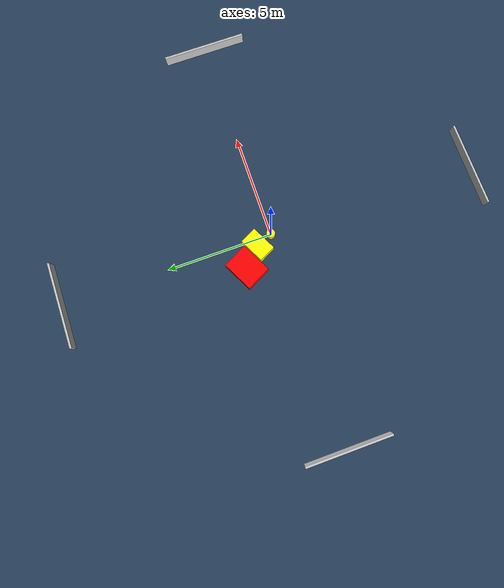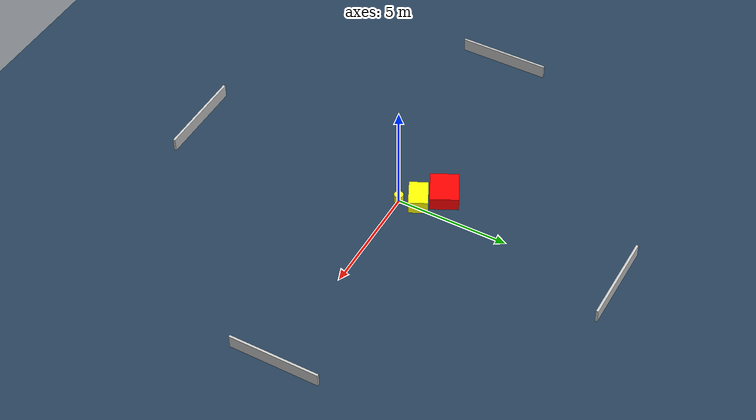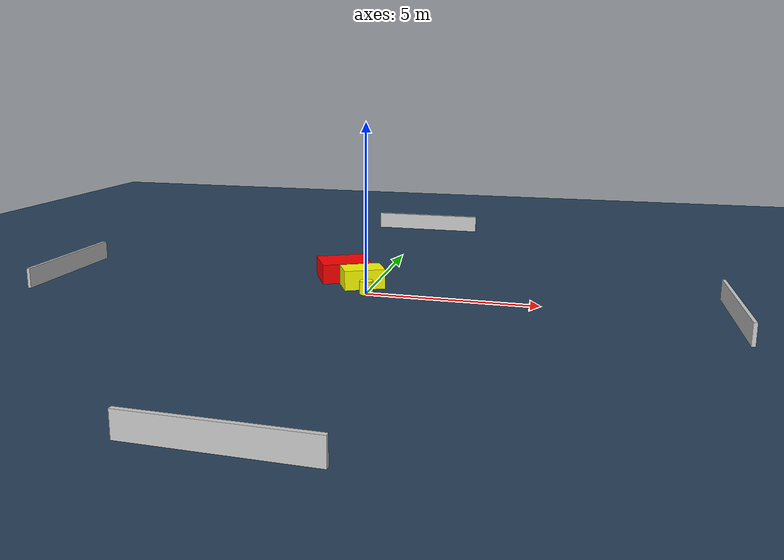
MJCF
<?xml version="1.0" ?>
<mujoco model="generated_environment">
  <option timestep="0.01" integrator="RK4" cone="elliptic"/>
  <default>
    <geom density="1"/>
  </default>
  <asset>
    <texture builtin="gradient" height="3072" name="skybox" rgb1="0.3 0.5 0.7" rgb2="0 0 0" type="skybox" width="512"/>
    <texture builtin="checker" height="300" name="groundplane" rgb1="0.2 0.3 0.4" rgb2="0.1 0.2 0.3" type="2d" width="300"/>
    <material name="groundplane" reflectance="0.2" texrepeat="5 5" texture="groundplane"/>
  </asset>
  <worldbody>
    <light dir="0 0 -1" directional="true" pos="0 0 1.5"/>
    <geom condim="3" friction="0.5 0.005 0.001" material="groundplane" name="floor" pos="0 0 0" size="0 0 0.05" type="plane"/>
    <body name="walls">
      <geom name="wall_1" condim="4" pos="-10.0 0.0 0.3" rgba="0.800000011920929 0.800000011920929 0.800000011920929 1.0" size="0.05 2.0 0.3" type="box"/>
      <geom name="wall_2" condim="4" pos="10.0 0.0 0.3" rgba="0.800000011920929 0.800000011920929 0.800000011920929 1.0" size="0.05 2.0 0.3" type="box"/>
      <geom name="wall_3" condim="4" pos="0.0 -10.0 0.3" rgba="0.800000011920929 0.800000011920929 0.800000011920929 1.0" size="2.0 0.05 0.3" type="box"/>
      <geom name="wall_4" condim="4" pos="0.0 10.0 0.3" rgba="0.800000011920929 0.800000011920929 0.800000011920929 1.0" size="2.0 0.05 0.3" type="box"/>
    </body>
    <body name="robot">
      <joint name="joint_x" type="slide" pos="0 0 0" axis="1 0 0"/>
      <joint name="joint_y" type="slide" pos="0 0 0" axis="0 1 0"/>
      <geom name="robot" type="cylinder" pos="0.0 0.0 0.2" size="0.2 0.2 0.0" mass="5.0" friction="1.0 0.005 0.0001" condim="4" rgba="1.0 1.0 0.0 1.0"/>
    </body>
    <body name="obstacle_1_movable">
      <geom name="obstacle_1_movable" condim="4" pos="-0.32850593057195804 0.7634484775635053 0.3" euler="0 0 116.48455112231798" friction="0.0 0.005 0.001" rgba="1.0 1.0 0.0 1.0" size="0.41877162701988246 0.6208691206175986 0.3" type="box" mass="0.1"/>
      <joint type="free"/>
    </body>
    <body name="obstacle_2_static">
      <geom name="obstacle_2_static" condim="4" pos="-1.1567761476220277 1.562250820932414 0.3" euler="0 0 207.07508839291347" friction="0.0 0.005 0.001" rgba="1.0 0.0 0.0 1.0" size="0.7613914695353363 0.61896294455872 0.3" type="box"/>
    </body>
  </worldbody>
  <actuator>
    <motor name="actuator_x" joint="joint_x" gear="1" ctrlrange="-1 1"/>
    <motor name="actuator_y" joint="joint_y" gear="1" ctrlrange="-1 1"/>
  </actuator>
</mujoco>
